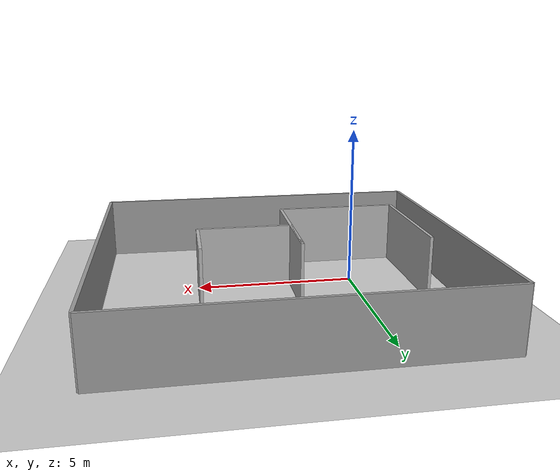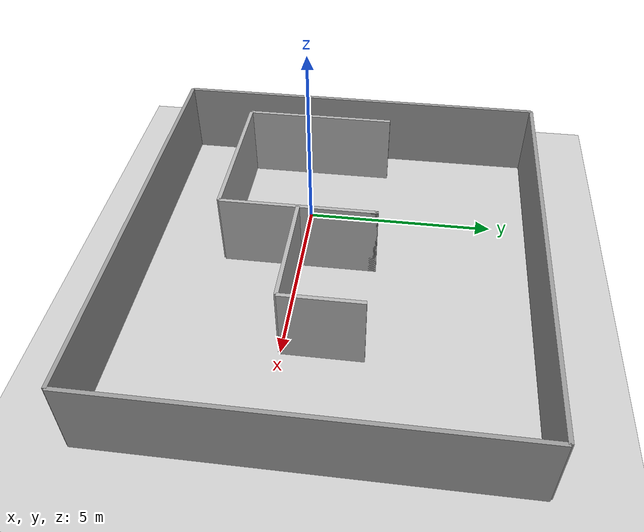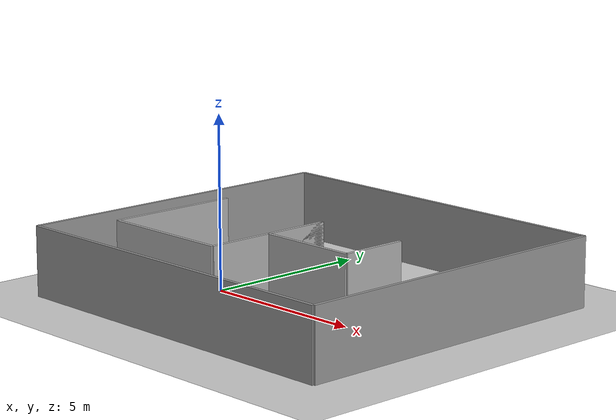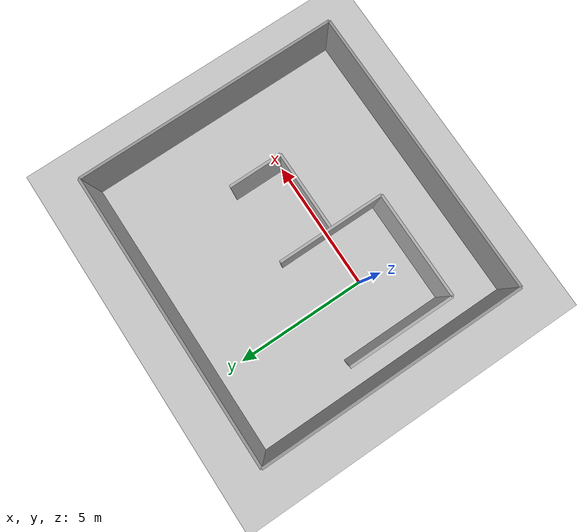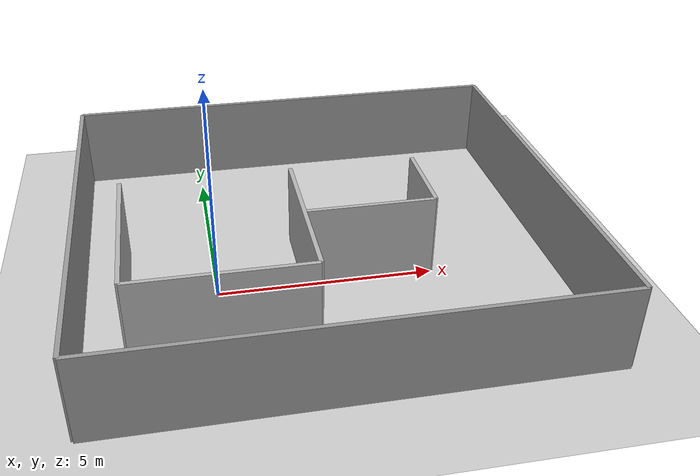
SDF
<?xml version="1.0" ?>
<sdf version="1.9">
  <world name="empty_world">
    <physics name="1ms" type="ignored">
      <max_step_size>0.001</max_step_size>
      <real_time_factor>1.0</real_time_factor>
    </physics>
    <plugin filename="gz-sim-physics-system" name="gz::sim::systems::Physics" />
    <plugin filename="gz-sim-user-commands-system" name="gz::sim::systems::UserCommands" />
    <plugin filename="gz-sim-scene-broadcaster-system" name="gz::sim::systems::SceneBroadcaster" />
    <plugin filename="gz-sim-imu-system" name="gz::sim::systems::Imu" />
    <plugin filename="gz-sim-sensors-system" name="gz::sim::systems::Sensors">
      <render_engine>ogre2</render_engine>
    </plugin>

    <light type="directional" name="sun">
      <cast_shadows>true</cast_shadows>
      <pose>0 0 10 0 0 0</pose>
      <diffuse>0.8 0.8 0.8 1</diffuse>
      <specular>0.2 0.2 0.2 1</specular>
      <attenuation>
        <range>1000</range>
        <constant>0.9</constant>
        <linear>0.01</linear>
        <quadratic>0.001</quadratic>
      </attenuation>
      <direction>-0.5 0.1 -0.9</direction>
    </light>

    <model name="ground_plane">
      <static>true</static>
      <link name="link">
        <collision name="collision">
          <geometry>
            <plane>
              <normal>0 0 1</normal>
              <size>100 100</size>
            </plane>
          </geometry>
        </collision>
        <visual name="visual">
          <geometry>
            <plane>
              <normal>0 0 1</normal>
              <size>100 100</size>
            </plane>
          </geometry>
          <material>
            <ambient>0.8 0.8 0.8 1</ambient>
            <diffuse>0.8 0.8 0.8 1</diffuse>
            <specular>0.8 0.8 0.8 1</specular>
          </material>
        </visual>
      </link>
    </model>

    <!-- Small Room -->
    <model name="small_room_walls">
      <static>true</static>
      <!-- Wall 1 : Left -->
      <link name="wall_1">
        <pose>-2 0 1 0 0 0</pose>
        <collision name="collision">
          <geometry>
            <box>
              <size>0.1 4 2</size>
            </box>
          </geometry>
        </collision>
        <visual name="visual">
          <geometry>
            <box>
              <size>0.1 4 2</size>
            </box>
          </geometry>
          <material>
            <ambient>0.7 0.7 0.7 1</ambient>
            <diffuse>0.7 0.7 0.7 1</diffuse>
          </material>
        </visual>
      </link>

      <!-- Wall 2: Right -->
      <link name="wall_2">
        <pose>2 0 1 0 0 0</pose>
        <collision name="collision">
          <geometry>
            <box>
              <size>0.1 4 2</size>
            </box>
          </geometry>
        </collision>
        <visual name="visual">
          <geometry>
            <box>
              <size>0.1 4 2</size>
            </box>
          </geometry>
          <material>
            <ambient>0.7 0.7 0.7 1</ambient>
            <diffuse>0.7 0.7 0.7 1</diffuse>
          </material>
        </visual>
      </link>

      <!-- Wall 3: Back -->
      <link name="wall_3">
        <pose>0 -2 1 0 0 0</pose>
        <collision name="collision">
          <geometry>
            <box>
              <size>4 0.1 2</size>
            </box>
          </geometry>
        </collision>
        <visual name="visual">
          <geometry>
            <box>
              <size>4 0.1 2</size>
            </box>
          </geometry>
          <material>
            <ambient>0.7 0.7 0.7 1</ambient>
            <diffuse>0.7 0.7 0.7 1</diffuse>
          </material>
        </visual>
      </link>

      <!-- Wall 4: Front (open to corridor) -->
      <!-- open side -->
    </model>

    <!-- Corridor between rooms -->
    <model name="corridor_walls">
      <static>true</static>
      <!-- Corridor left side -->
      <link name="corridor_left">
        <pose>2 1 1 0 0 0</pose>
        <collision name="collision">
          <geometry>
            <box>
              <size>0.1 2 2</size>
            </box>
          </geometry>
        </collision>
        <visual name="visual">
          <geometry>
            <box>
              <size>0.1 2 2</size>
            </box>
          </geometry>
          <material>
            <ambient>0.7 0.7 0.7 1</ambient>
            <diffuse>0.7 0.7 0.7 1</diffuse>
          </material>
        </visual>
      </link>

      <!-- Corridor right side -->
      <link name="corridor_right">
        <pose>5 1 1 0 0 0</pose>
        <collision name="collision">
          <geometry>
            <box>
              <size>0.1 2 2</size>
            </box>
          </geometry>
        </collision>
        <visual name="visual">
          <geometry>
            <box>
              <size>0.1 2 2</size>
            </box>
          </geometry>
          <material>
            <ambient>0.7 0.7 0.7 1</ambient>
            <diffuse>0.7 0.7 0.7 1</diffuse>
          </material>
        </visual>
      </link>

      <!-- Corridor back (small wall) -->
      <link name="corridor_back">
        <pose>3.5 0 1 0 0 0</pose>
        <collision name="collision">
          <geometry>
            <box>
              <size>3 0.1 2</size>
            </box>
          </geometry>
        </collision>
        <visual name="visual">
          <geometry>
            <box>
              <size>3 0.1 2</size>
            </box>
          </geometry>
          <material>
            <ambient>0.7 0.7 0.7 1</ambient>
            <diffuse>0.7 0.7 0.7 1</diffuse>
          </material>
        </visual>
      </link>
    </model>

    <!-- Large Room -->
    <model name="large_room_walls">
      <pose>-10 0 0 0 0 0</pose>
      <static>true</static>
      <!-- Large room left wall -->
      <link name="large_wall_1">
        <pose>7 1 1 0 0 0</pose>
        <collision name="collision">
          <geometry>
            <box>
              <size>0.1 10 2</size>
            </box>
          </geometry>
        </collision>
        <visual name="visual">
          <geometry>
            <box>
              <size>0.1 10 2</size>
            </box>
          </geometry>
          <material>
            <ambient>0.6 0.6 0.6 1</ambient>
            <diffuse>0.6 0.6 0.6 1</diffuse>
          </material>
        </visual>
      </link>

      <!-- Large room right wall -->
      <link name="large_wall_2">
        <pose>18 1 1 0 0 0</pose>
        <collision name="collision">
          <geometry>
            <box>
              <size>0.1 10 2</size>
            </box>
          </geometry>
        </collision>
        <visual name="visual">
          <geometry>
            <box>
              <size>0.1 10 2</size>
            </box>
          </geometry>
          <material>
            <ambient>0.6 0.6 0.6 1</ambient>
            <diffuse>0.6 0.6 0.6 1</diffuse>
          </material>
        </visual>
      </link>

      <!-- Large room front wall -->
      <link name="large_wall_3">
        <pose>12.5 6 1 0 0 0</pose>
        <collision name="collision">
          <geometry>
            <box>
              <size>11 0.1 2</size>
            </box>
          </geometry>
        </collision>
        <visual name="visual">
          <geometry>
            <box>
              <size>11 0.1 2</size>
            </box>
          </geometry>
          <material>
            <ambient>0.6 0.6 0.6 1</ambient>
            <diffuse>0.6 0.6 0.6 1</diffuse>
          </material>
        </visual>
      </link>

      <!-- Large room back wall (connected to corridor) -->
      <link name="large_wall_4">
        <pose>12.5 -4 1 0 0 0</pose>
        <collision name="collision">
          <geometry>
            <box>
              <size>11 0.1 2</size>
            </box>
          </geometry>
        </collision>
        <visual name="visual">
          <geometry>
            <box>
              <size>11 0.1 2</size>
            </box>
          </geometry>
          <material>
            <ambient>0.6 0.6 0.6 1</ambient>
            <diffuse>0.6 0.6 0.6 1</diffuse>
          </material>
        </visual>
      </link>
    </model>

    <!-- Keyboard control plugins for movement -->
    <plugin filename="gz-sim-triggered-publisher-system" name="gz::sim::systems::TriggeredPublisher">
        <input type="gz.msgs.Int32" topic="/keyboard/keypress">
            <match field="data">16777237</match>
        </input>
        <output type="gz.msgs.Twist" topic="/cmd_vel">
            linear: {x: -0.5}, angular: {z: 0.0}
        </output>
    </plugin>
    <plugin filename="gz-sim-triggered-publisher-system" name="gz::sim::systems::TriggeredPublisher">
        <input type="gz.msgs.Int32" topic="/keyboard/keypress">
            <match field="data">16777235</match>
        </input>
        <output type="gz.msgs.Twist" topic="/cmd_vel">
            linear: {x: 0.5}, angular: {z: 0.0}
        </output>
    </plugin>
    <plugin filename="gz-sim-triggered-publisher-system" name="gz::sim::systems::TriggeredPublisher">
        <input type="gz.msgs.Int32" topic="/keyboard/keypress">
            <match field="data">16777234</match>
        </input>
        <output type="gz.msgs.Twist" topic="/cmd_vel">
            linear: {x: 0.0}, angular: {z: 0.5}
        </output>
    </plugin>
    <plugin filename="gz-sim-triggered-publisher-system" name="gz::sim::systems::TriggeredPublisher">
        <input type="gz.msgs.Int32" topic="/keyboard/keypress">
            <match field="data">16777236</match>
        </input>
        <output type="gz.msgs.Twist" topic="/cmd_vel">
            linear: {x: 0.0}, angular: {z: -0.5}
        </output>
    </plugin>
    <plugin filename="gz-sim-triggered-publisher-system" name="gz::sim::systems::TriggeredPublisher">
        <input type="gz.msgs.Int32" topic="/keyboard/keypress">
            <match field="data">83</match>
        </input>
        <output type="gz.msgs.Twist" topic="/cmd_vel">
            linear: {x: 0.0}, angular: {z: 0.0}
        </output>
    </plugin>
  </world>
</sdf>
